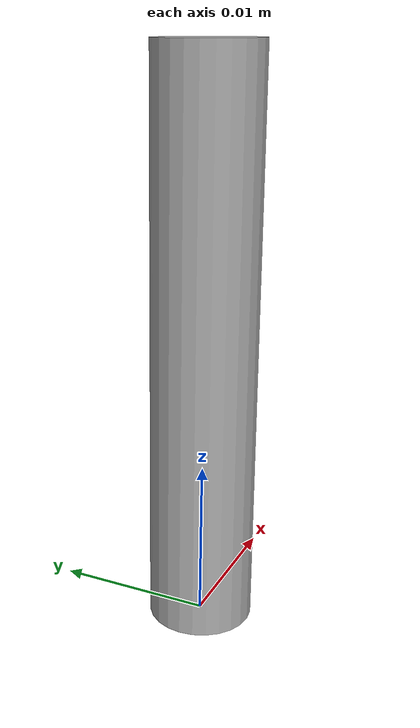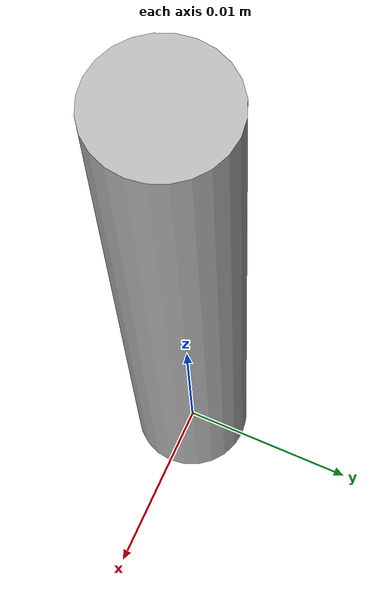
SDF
<?xml version="1.0"?>
<sdf version="1.6">
  <model name="Metal_Peg_v2">
    <link name="link">
      <pose>0 0 0.018 0 0 0</pose>
      <inertial>
        <mass>0.0121</mass>
        <inertia>
          <ixx>1.3397422499999998e-06</ixx>
          <ixy>0</ixy>
          <ixz>0</ixz>
          <iyy>1.3397422499999998e-06</iyy>
          <iyz>0</iyz>
          <izz>6.58845e-08</izz>
        </inertia>
      </inertial>

      <collision name="collision">
        <geometry>
          <cylinder>
            <radius> 0.0033 </radius>
            <length> 0.036 </length>
          </cylinder>
        </geometry>
        <surface>
          <contact>
            <!-- stainless steel 18-8 material properties -->
            <poissons_ratio>0.305</poissons_ratio>
            <elastic_modulus>2.0e+11</elastic_modulus>
            <ode>
              <kp>100000</kp>
              <kd>100</kd>
              <max_vel>100.0</max_vel>
              <min_depth>0.001</min_depth>
            </ode>
          </contact>
          <friction>
            <torsional>
              <coefficient>1.0</coefficient>
              <use_patch_radius>0</use_patch_radius>
              <surface_radius>0.01</surface_radius>
            </torsional>
          </friction>
        </surface>
      </collision>

      <visual name="visual">
        <geometry>
          <cylinder>
            <radius> 0.0033 </radius>
            <length> 0.036 </length>
          </cylinder>
        </geometry>
        <material>
          <script>
            <uri>file://media/materials/scripts/gazebo.material</uri>
            <name>Gazebo/Chrome</name>
          </script>
        </material>
      </visual>

    </link>

    <plugin name="SimplifiedContact" filename="libSimplifiedContactPlugin.so">
      <collision_names>link::collision</collision_names>
      <attach_threshold>0.1</attach_threshold>
      <detach_threshold>0.1</detach_threshold>
      <rate>10.0</rate>
    </plugin>
  </model>
</sdf>
